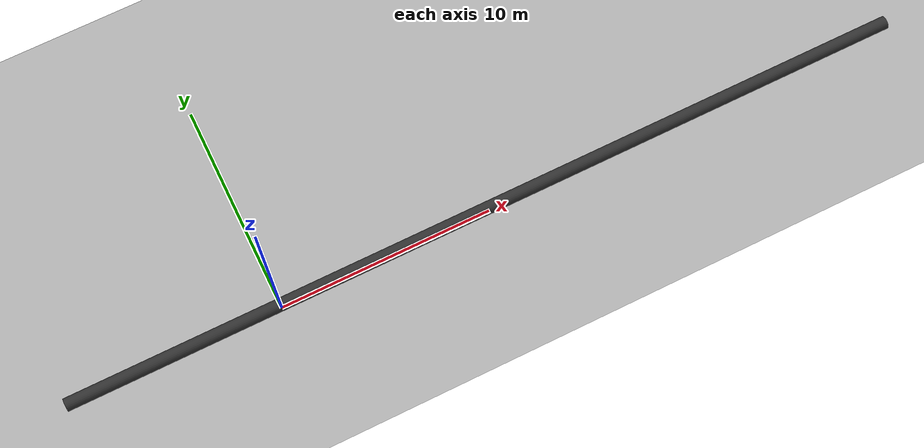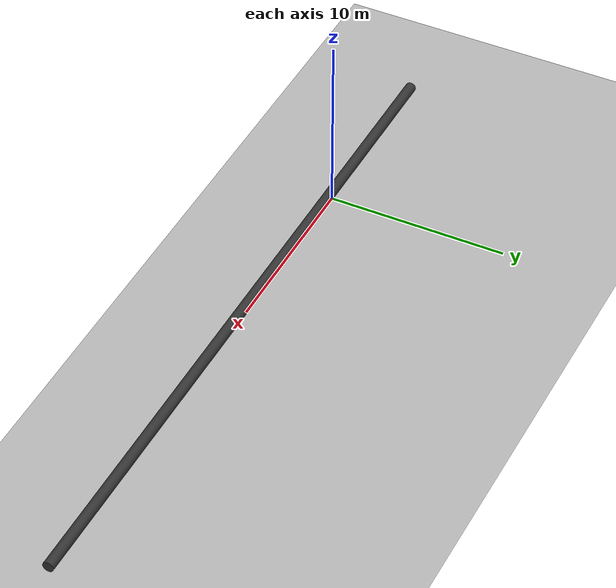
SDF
<?xml version="1.0" ?>
<sdf version="1.8">
  <world name="inspection_world">
    <physics name="1ms" type="ignored">
      <max_step_size>0.001</max_step_size>
      <real_time_factor>1.0</real_time_factor>
    </physics>

    <plugin filename="libignition-gazebo-physics-system.so" name="ignition::gazebo::systems::Physics" />
    <plugin filename="libignition-gazebo-user-commands-system.so" name="ignition::gazebo::systems::UserCommands" />
    <plugin filename="libignition-gazebo-scene-broadcaster-system.so" name="ignition::gazebo::systems::SceneBroadcaster" />

    <light type="directional" name="sun">
      <cast_shadows>true</cast_shadows>
      <pose>0 0 10 0 0 0</pose>
      <diffuse>0.8 0.8 0.8 1</diffuse>
      <specular>0.2 0.2 0.2 1</specular>
      <direction>-0.5 0.1 -0.9</direction>
    </light>

    <model name="ground_plane">
      <static>true</static>
      <link name="link">
        <collision name="collision">
          <geometry><plane><normal>0 0 1</normal></plane></geometry>
        </collision>
        <visual name="visual">
          <geometry><plane><normal>0 0 1</normal></plane></geometry>
          <material>
            <ambient>0.3 0.3 0.3 1</ambient>
            <diffuse>0.7 0.7 0.7 1</diffuse>
          </material>
        </visual>
      </link>
    </model>

    <!-- The Inspection Pipeline -->
    <model name="pipeline">
      <static>true</static>
      <pose>10 0 0.5 0 1.57 0</pose>
      <link name="link">
        <collision name="collision">
          <geometry><cylinder><radius>0.3</radius><length>40</length></cylinder></geometry>
        </collision>
        <visual name="visual">
          <geometry><cylinder><radius>0.3</radius><length>40</length></cylinder></geometry>
          <material><ambient>0.5 0.5 0.5 1</ambient><diffuse>0.2 0.2 0.2 1</diffuse></material>
        </visual>
      </link>
    </model>

  </world>
</sdf>
